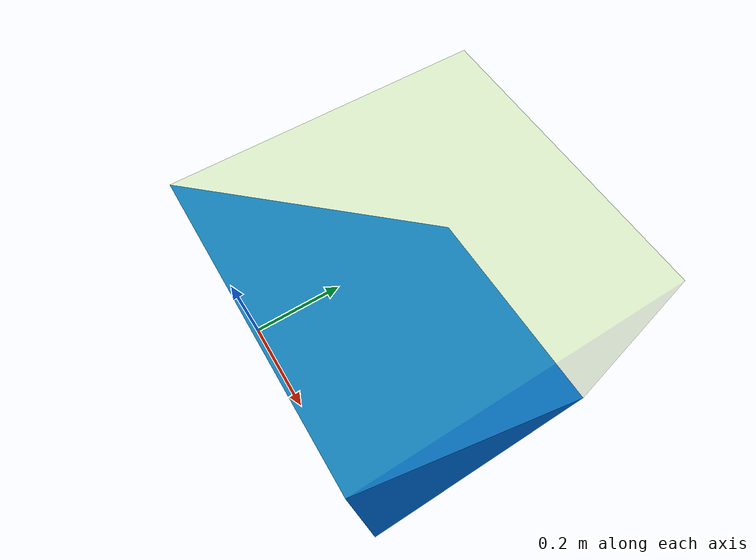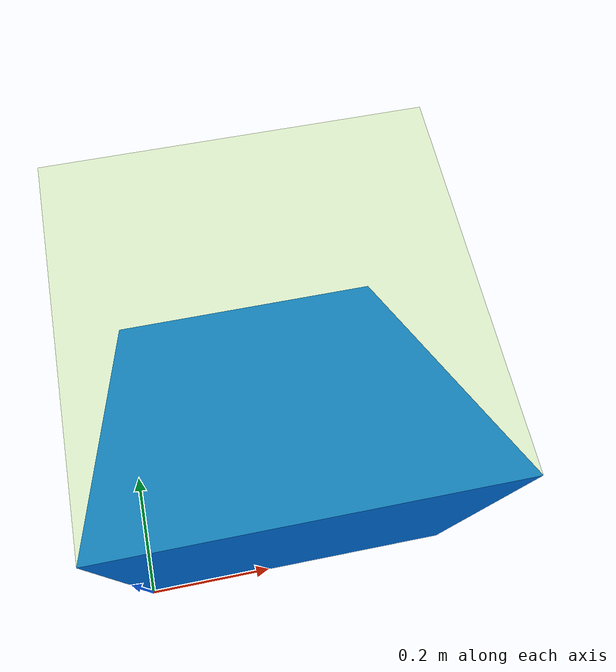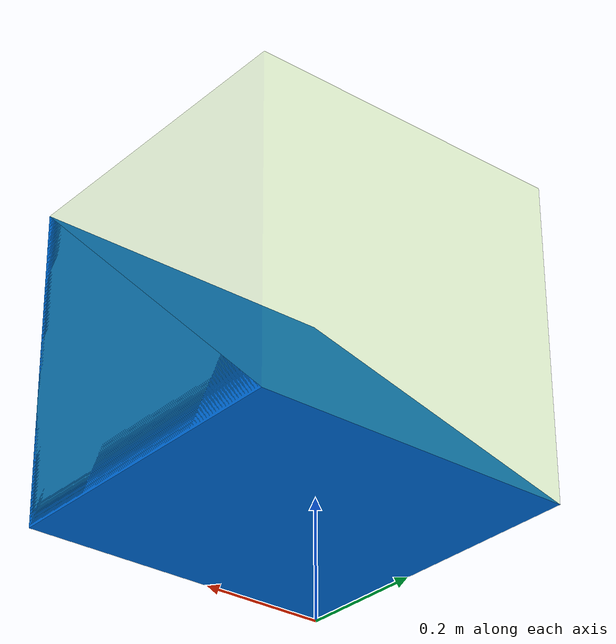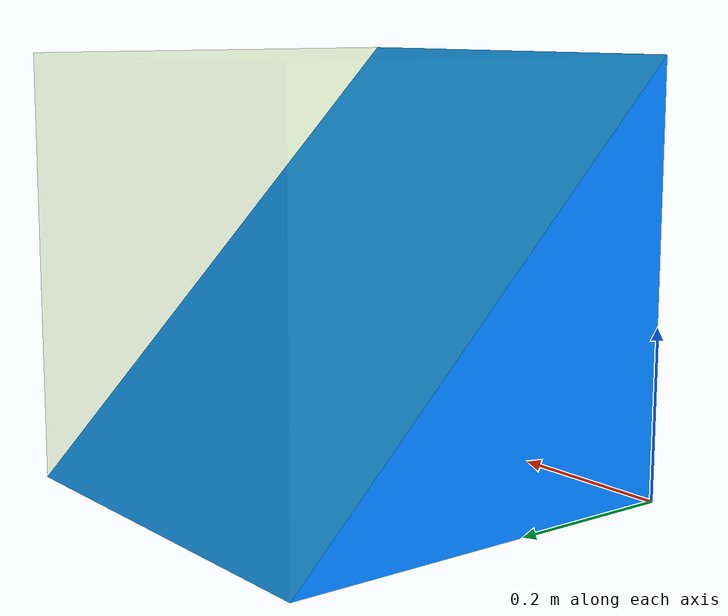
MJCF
<?xml version="1.0" encoding="utf-8"?>
<!-- 45 Degree Ramp -->
<mujoco>
	<asset>
		 <mesh file="ramp.stl" name="ramp" scale="0.5 0.5 0.5"/>
		 <material name="rampmat" specular="1" shininess=".3" reflectance="0" rgba="0.0 0.5 1.0 1.0"/>
	</asset>
	<worldbody>
		<body name="ramp" pos="0.25 0.25 0.25">
			<geom name="ramp" pos="0 0 0" type="mesh" mesh="ramp" mass="1.0" material="rampmat"/>
			<joint axis="1 0 0" damping="0.1" name="tx" pos="0.0 0.0 0.0" type="slide"></joint>
			<joint axis="0 1 0" damping="0.1" name="ty" pos="0.0 0.0 0.0" type="slide"></joint>
			<joint axis="0 0 1" damping="0.1" name="tz" pos="0.0 0.0 0.0" type="slide"></joint>
			<joint axis="0 0 1" damping="0.1" name="rz" pos="0.0 0.0 0.0" type="hinge"></joint>
		</body>
		<body name="annotation:outer_bound" pos="0.25 0.25 0.25">
			<geom conaffinity="0" contype="0" mass="0" pos="0 0 0" rgba="0.417 0.7203 0.0001 0.1" size="0.25 0.25 0.25" type="box"></geom>
		</body>
	</worldbody>
</mujoco>
